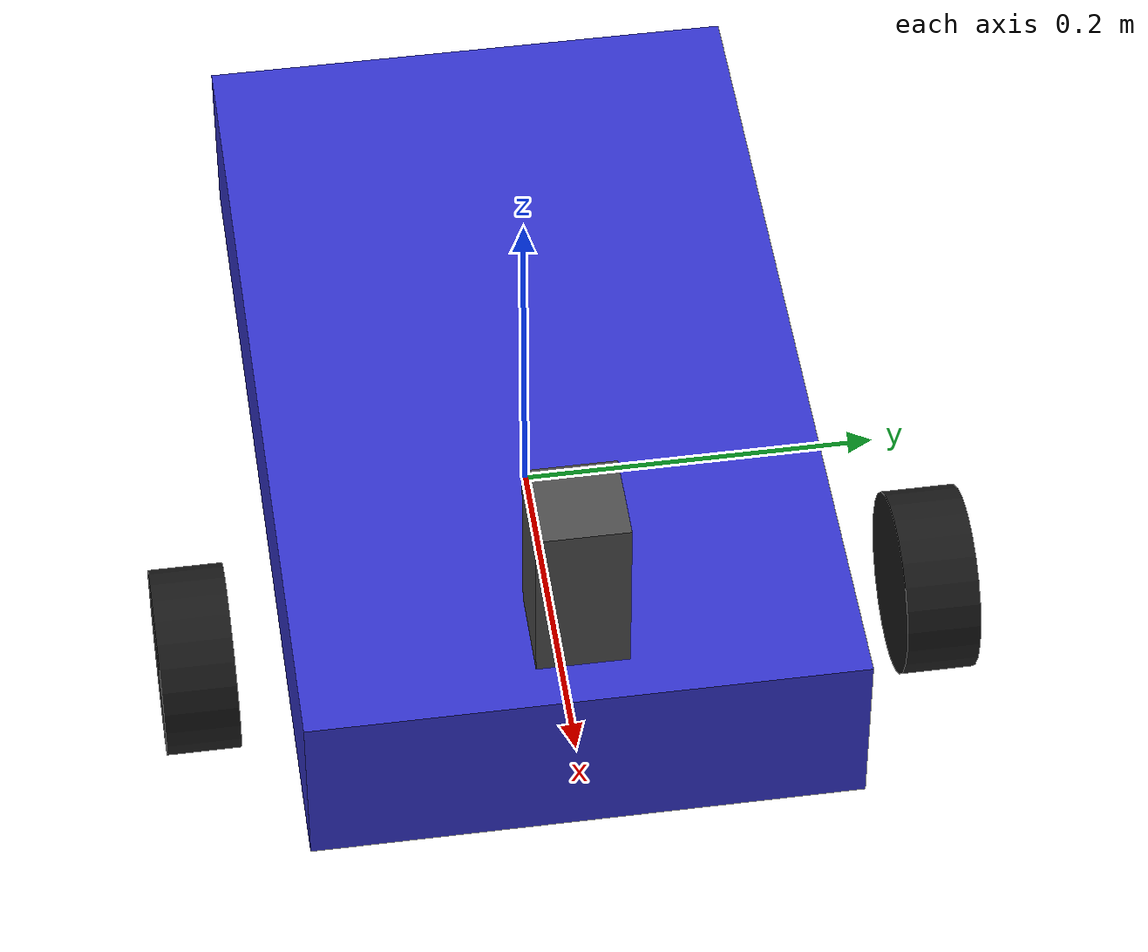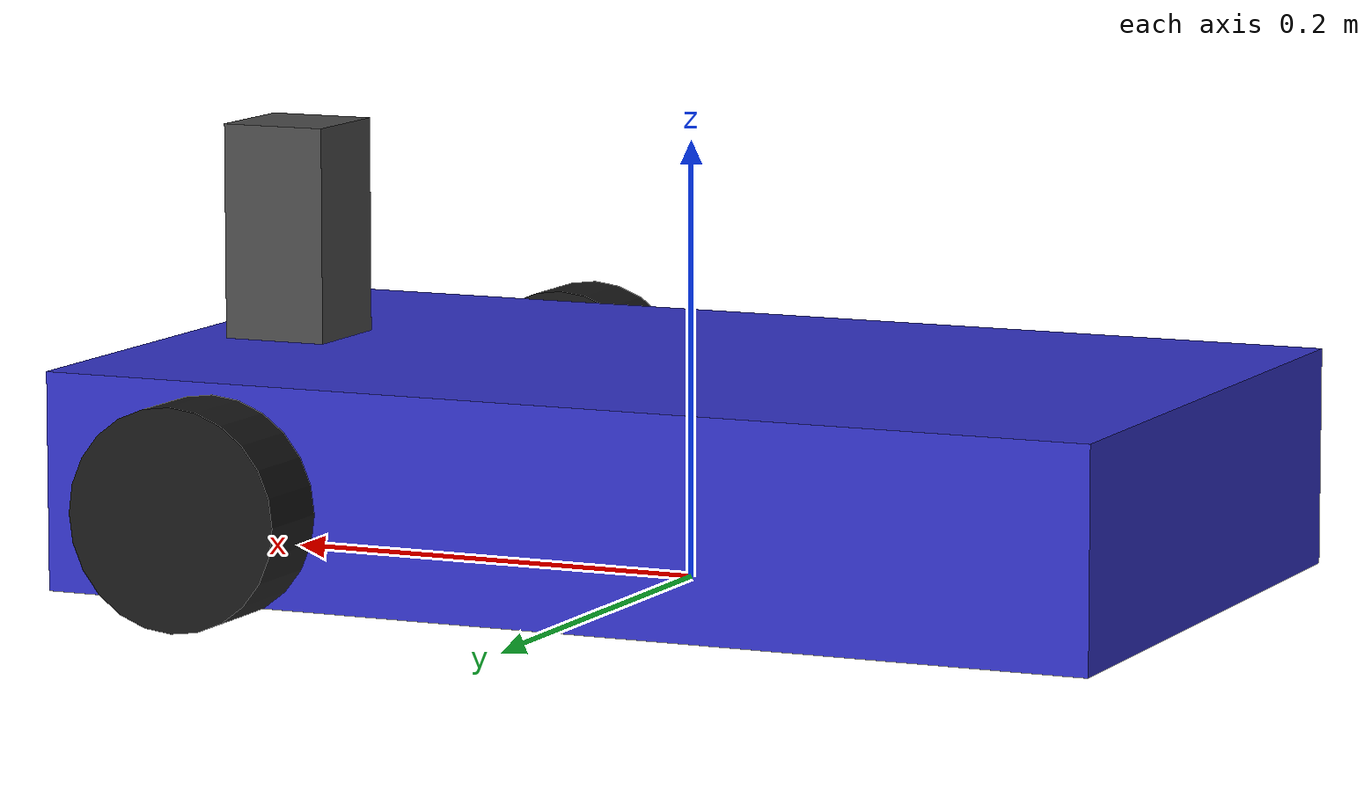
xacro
<?xml version="1.0"?>
<robot xmlns:xacro="http://www.ros.org/wiki/xacro" name="helios">

  <!-- Include Gazebo ROS control plugin -->
  <xacro:include filename="$(find helios_description)/urdf/gazebo_control.xacro" />

  <!-- Robot Properties -->
  <xacro:property name="base_width" value="0.3"/>
  <xacro:property name="base_length" value="0.5"/>
  <xacro:property name="base_height" value="0.1"/>

  <xacro:property name="wheel_radius" value="0.05"/>
  <xacro:property name="wheel_width" value="0.04"/>
  <xacro:property name="wheel_ygap" value="0.2"/>
  <xacro:property name="wheel_xoff" value="0.15"/>
  <xacro:property name="wheel_zoff" value="0.05"/>

  <xacro:property name="caster_radius" value="0.025"/>
  <xacro:property name="caster_xoff" value="-0.15"/>

  <!-- Base Link -->
  <link name="base_link">
    <inertial>
      <origin xyz="0 0 ${base_height/2}" rpy="0 0 0"/>
      <mass value="5.0"/>
      <inertia
        ixx="0.1" ixy="0" ixz="0"
        iyy="0.1" iyz="0"
        izz="0.1"/>
    </inertial>

    <visual>
      <origin xyz="0 0 ${base_height/2}" rpy="0 0 0"/>
      <geometry>
        <box size="${base_length} ${base_width} ${base_height}"/>
      </geometry>
      <material name="blue">
        <color rgba="0.2 0.2 0.8 1.0"/>
      </material>
    </visual>

    <collision>
      <origin xyz="0 0 ${base_height/2}" rpy="0 0 0"/>
      <geometry>
        <box size="${base_length} ${base_width} ${base_height}"/>
      </geometry>
    </collision>
  </link>

  <!-- Left Wheel -->
  <link name="left_wheel">
    <inertial>
      <origin xyz="0 0 0" rpy="${pi/2} 0 0"/>
      <mass value="0.5"/>
      <inertia
        ixx="0.001" ixy="0" ixz="0"
        iyy="0.001" iyz="0"
        izz="0.001"/>
    </inertial>

    <visual>
      <origin xyz="0 0 0" rpy="${pi/2} 0 0"/>
      <geometry>
        <cylinder radius="${wheel_radius}" length="${wheel_width}"/>
      </geometry>
      <material name="black">
        <color rgba="0.1 0.1 0.1 1.0"/>
      </material>
    </visual>

    <collision>
      <origin xyz="0 0 0" rpy="${pi/2} 0 0"/>
      <geometry>
        <cylinder radius="${wheel_radius}" length="${wheel_width}"/>
      </geometry>
    </collision>
  </link>

  <!-- Left Wheel Joint -->
  <joint name="left_wheel_joint" type="continuous">
    <parent link="base_link"/>
    <child link="left_wheel"/>
    <origin xyz="${wheel_xoff} ${wheel_ygap} ${wheel_zoff}" rpy="0 0 0"/>
    <axis xyz="0 1 0"/>
    <dynamics damping="0.1" friction="0.1"/>
  </joint>

  <!-- Right Wheel -->
  <link name="right_wheel">
    <inertial>
      <origin xyz="0 0 0" rpy="${pi/2} 0 0"/>
      <mass value="0.5"/>
      <inertia
        ixx="0.001" ixy="0" ixz="0"
        iyy="0.001" iyz="0"
        izz="0.001"/>
    </inertial>

    <visual>
      <origin xyz="0 0 0" rpy="${pi/2} 0 0"/>
      <geometry>
        <cylinder radius="${wheel_radius}" length="${wheel_width}"/>
      </geometry>
      <material name="black">
        <color rgba="0.1 0.1 0.1 1.0"/>
      </material>
    </visual>

    <collision>
      <origin xyz="0 0 0" rpy="${pi/2} 0 0"/>
      <geometry>
        <cylinder radius="${wheel_radius}" length="${wheel_width}"/>
      </geometry>
    </collision>
  </link>

  <!-- Right Wheel Joint -->
  <joint name="right_wheel_joint" type="continuous">
    <parent link="base_link"/>
    <child link="right_wheel"/>
    <origin xyz="${wheel_xoff} -${wheel_ygap} ${wheel_zoff}" rpy="0 0 0"/>
    <axis xyz="0 1 0"/>
    <dynamics damping="0.1" friction="0.1"/>
  </joint>

  <!-- Caster Wheel -->
  <link name="caster">
    <inertial>
      <origin xyz="0 0 0" rpy="0 0 0"/>
      <mass value="0.1"/>
      <inertia
        ixx="0.0001" ixy="0" ixz="0"
        iyy="0.0001" iyz="0"
        izz="0.0001"/>
    </inertial>

    <visual>
      <origin xyz="0 0 0" rpy="0 0 0"/>
      <geometry>
        <sphere radius="${caster_radius}"/>
      </geometry>
      <material name="black">
        <color rgba="0.1 0.1 0.1 1.0"/>
      </material>
    </visual>

    <collision>
      <origin xyz="0 0 0" rpy="0 0 0"/>
      <geometry>
        <sphere radius="${caster_radius}"/>
      </geometry>
    </collision>
  </link>

  <!-- Caster Joint -->
  <joint name="caster_joint" type="fixed">
    <parent link="base_link"/>
    <child link="caster"/>
    <origin xyz="${caster_xoff} 0 ${caster_radius}" rpy="0 0 0"/>
  </joint>

  <!-- Sensor Mount -->
  <link name="sensor_mount">
    <inertial>
      <origin xyz="0 0 0" rpy="0 0 0"/>
      <mass value="0.1"/>
      <inertia
        ixx="0.0001" ixy="0" ixz="0"
        iyy="0.0001" iyz="0"
        izz="0.0001"/>
    </inertial>

    <visual>
      <origin xyz="0 0 0.05" rpy="0 0 0"/>
      <geometry>
        <box size="0.05 0.05 0.1"/>
      </geometry>
      <material name="grey">
        <color rgba="0.3 0.3 0.3 1.0"/>
      </material>
    </visual>

    <collision>
      <origin xyz="0 0 0.05" rpy="0 0 0"/>
      <geometry>
        <box size="0.05 0.05 0.1"/>
      </geometry>
    </collision>
  </link>

  <!-- Sensor Mount Joint -->
  <joint name="sensor_mount_joint" type="fixed">
    <parent link="base_link"/>
    <child link="sensor_mount"/>
    <origin xyz="0.2 0 ${base_height}" rpy="0 0 0"/>
  </joint>

  <!-- Add Gazebo ROS control -->
  <xacro:gazebo_control/>

</robot>
